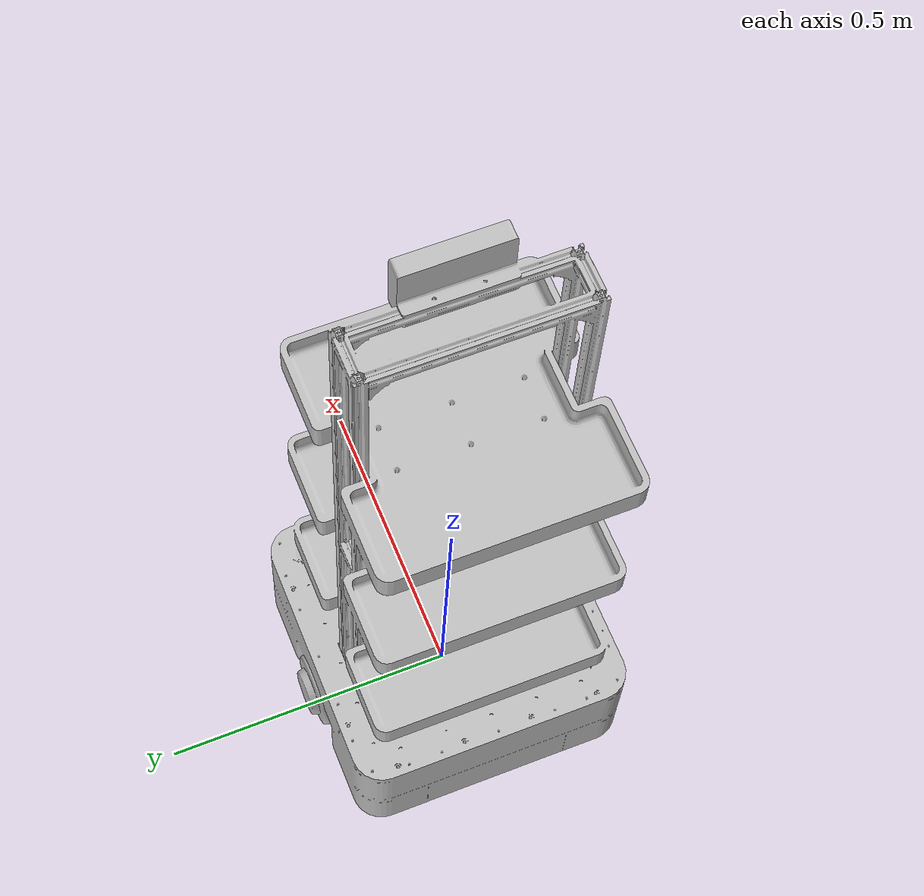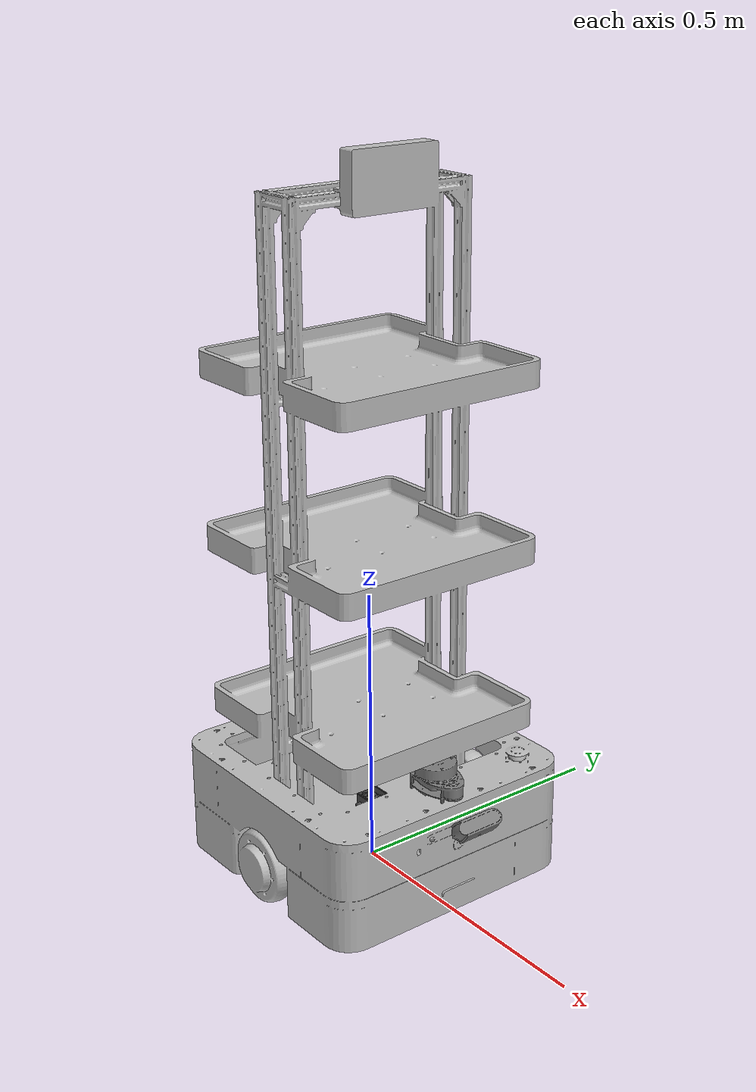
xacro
<?xml version="1.0"?>
<robot name="robot_full_design"
  xmlns:xacro="http://www.ros.org/wiki/xacro">

  <xacro:arg name="use_sim"   default="false"/>
  <xacro:arg name="use_lidar" default="true"/>

  <!-- ============================================================
       Properties
       ============================================================ -->

  <!-- Base body — SW mass; heavy parts (motors, batteries, chassis) sit low -->
  <xacro:property name="base_mass"   value="17.12"/>
  <xacro:property name="base_len"    value="0.42"/>
  <xacro:property name="base_width"  value="0.42"/>
  <xacro:property name="base_height" value="0.64"/>
  <xacro:property name="base_com_z"  value="0.08"/>  <!-- lowered CoM: heavy parts near base -->

  <!-- Wheels — old URDF values; SW wheel mass (21.77 kg) is corrupt due to grouping error -->
  <xacro:property name="wheel_mass"       value="5.5"/>
  <xacro:property name="wheel_radius"     value="0.065"/>
  <xacro:property name="wheel_width"      value="0.045"/>
  <xacro:property name="wheel_separation" value="0.45"/>
  <xacro:property name="wheel_diameter"   value="${2 * wheel_radius}"/>

  <!-- Spawn height: |wheel_joint_z| + wheel_radius + 1 cm clearance -->
  <xacro:property name="max_wheel_z" value="0.04"/>
  <xacro:property name="spawn_z"     value="${max_wheel_z + wheel_radius + 0.01}"/>

  <!-- Casters -->
  <xacro:property name="caster_mass"   value="0.108"/>
  <xacro:property name="caster_radius" value="0.0325"/>

  <!-- ============================================================
       Inertia macros
       ============================================================ -->

  <xacro:macro name="box_inertia" params="m l w h xyz rpy">
    <inertial>
      <origin xyz="${xyz}" rpy="${rpy}"/>
      <mass value="${m}"/>
      <inertia ixx="${(1/12.0) * m * (h*h + l*l)}" ixy="0" ixz="0"
               iyy="${(1/12.0) * m * (w*w + l*l)}" iyz="0"
               izz="${(1/12.0) * m * (w*w + h*h)}"/>
    </inertial>
  </xacro:macro>

  <xacro:macro name="cylinder_inertia" params="m r h xyz rpy">
    <inertial>
      <origin xyz="${xyz}" rpy="${rpy}"/>
      <mass value="${m}"/>
      <inertia ixx="${(1/12.0) * m * (3*r*r + h*h)}" ixy="0" ixz="0"
               iyy="${(1/12.0) * m * (3*r*r + h*h)}" iyz="0"
               izz="${0.5 * m * r*r}"/>
    </inertial>
  </xacro:macro>

  <xacro:macro name="sphere_inertia" params="m r xyz rpy">
    <inertial>
      <origin xyz="${xyz}" rpy="${rpy}"/>
      <mass value="${m}"/>
      <inertia ixx="${(2/5.0) * m * r*r}" ixy="0" ixz="0"
               iyy="${(2/5.0) * m * r*r}" iyz="0"
               izz="${(2/5.0) * m * r*r}"/>
    </inertial>
  </xacro:macro>

  <!-- Wheel spinning about Y axis -->
  <xacro:macro name="wheel_inertia" params="m r h xyz rpy">
    <inertial>
      <origin xyz="${xyz}" rpy="${rpy}"/>
      <mass value="${m}"/>
      <inertia ixx="${(1/12.0) * m * (3*r*r + h*h)}" ixy="0" ixz="0"
               iyy="${0.5 * m * r*r}"                 iyz="0"
               izz="${(1/12.0) * m * (3*r*r + h*h)}"/>
    </inertial>
  </xacro:macro>

  <!-- ============================================================
       Links
       ============================================================ -->

  <link name="base_footprint"/>

  <joint name="base_footprint_joint" type="fixed">
    <parent link="base_footprint"/>
    <child link="base_link"/>
    <origin xyz="0 0 0.105" rpy="0 0 0"/>
  </joint>

  <link name="base_link">
    <xacro:box_inertia m="10.0" l="0.42" w="0.2" h="0.2"
                       xyz="0 0 0.1" rpy="0 0 0"/>
    <visual>
      <origin xyz="0 0 0" rpy="0 0 0"/>
      <geometry>
        <mesh filename="package://food_del_robot_full_description/meshes/base_link.STL"/>
      </geometry>
      <material name="">
        <color rgba="0.75 0.75 0.75 1"/>
      </material>
    </visual>
    <collision>
      <origin xyz="0 0 ${base_height/2}" rpy="0 0 0"/>
      <geometry>
        <box size="${base_len} ${base_width} ${base_height}"/>
      </geometry>
    </collision>
  </link>

  <link name="right_wheel_link">
    <xacro:wheel_inertia m="${wheel_mass}" r="${wheel_radius}" h="${wheel_width}"
                         xyz="0 0 0" rpy="0 0 0"/>
    <visual>
      <origin xyz="0 0 0" rpy="0 0 0"/>
      <geometry>
        <mesh filename="package://food_del_robot_full_description/meshes/right_wheel_link.STL"/>
      </geometry>
      <material name="">
        <color rgba="0.75 0.75 0.75 1"/>
      </material>
    </visual>
    <collision>
      <origin xyz="0 0 0" rpy="1.5708 0 0"/>
      <geometry>
        <cylinder radius="${wheel_radius}" length="${wheel_width}"/>
      </geometry>
    </collision>
  </link>

  <joint name="base_right_wheel_joint" type="continuous">
    <origin xyz="0 -0.225 -0.04" rpy="0 0 0"/>
    <parent link="base_link"/>
    <child link="right_wheel_link"/>
    <axis xyz="0 1 0"/>
  </joint>

  <link name="left_wheel_link">
    <xacro:wheel_inertia m="${wheel_mass}" r="${wheel_radius}" h="${wheel_width}"
                         xyz="0 0 0" rpy="0 0 0"/>
    <visual>
      <origin xyz="0 0 0" rpy="0 0 0"/>
      <geometry>
        <mesh filename="package://food_del_robot_full_description/meshes/left_wheel_link.STL"/>
      </geometry>
      <material name="">
        <color rgba="0.75 0.75 0.75 1"/>
      </material>
    </visual>
    <collision>
      <origin xyz="0 0 0" rpy="1.5708 0 0"/>
      <geometry>
        <cylinder radius="${wheel_radius}" length="${wheel_width}"/>
      </geometry>
    </collision>
  </link>

  <joint name="base_left_wheel_joint" type="continuous">
    <origin xyz="0 0.225 -0.04" rpy="0 0 0"/>
    <parent link="base_link"/>
    <child link="left_wheel_link"/>
    <axis xyz="0 1 0"/>
  </joint>

  <link name="lidar_link">
    <inertial>
      <origin xyz="0.010632 -0.0016703 -0.018432" rpy="0 0 0"/>
      <mass value="0.01"/>
      <inertia ixx="1.9581E-05" ixy="-1.0393E-07" ixz="-4.2839E-07"
               iyy="2.4125E-05" iyz="9.4269E-09"
               izz="4.1418E-05"/>
    </inertial>
    <visual>
      <origin xyz="0 0 0" rpy="0 0 0"/>
      <geometry>
        <mesh filename="package://food_del_robot_full_description/meshes/lidar_link.STL"/>
      </geometry>
      <material name="">
        <color rgba="0.5 0.5 0.5 1"/>
      </material>
    </visual>
    <collision>
      <origin xyz="0 0 0" rpy="0 0 0"/>
      <geometry>
        <box size="0.01 0.1 0.02"/>
      </geometry>
    </collision>
  </link>

  <joint name="base_lidar_joint" type="fixed">
    <origin xyz="0.17965 0.0011689 0.14817" rpy="0 0 0"/>
    <parent link="base_link"/>
    <child link="lidar_link"/>
    <axis xyz="0 0 0"/>
  </joint>

  <link name="camera_link">
    <inertial>
      <origin xyz="-0.016393 -0.014932 -1.9236E-05" rpy="0 0 0"/>
      <mass value="0.01"/>
      <inertia ixx="4.7928E-05" ixy="-1.6932E-06" ixz="-2.8381E-08"
               iyy="1.5244E-05" iyz="2.4938E-09"
               izz="5.159E-05"/>
    </inertial>
    <visual>
      <origin xyz="0 0 0" rpy="0 0 0"/>
      <geometry>
        <mesh filename="package://food_del_robot_full_description/meshes/camera_link.STL"/>
      </geometry>
      <material name="">
        <color rgba="0.5 0.5 0.5 1"/>
      </material>
    </visual>
    <collision>
      <origin xyz="0 0 0" rpy="0 0 0"/>
      <geometry>
        <box size="0.09 0.025 0.025"/>
      </geometry>
    </collision>
  </link>

  <joint name="base_camera_joint" type="fixed">
    <origin xyz="0.28915 0.017531 0.091186" rpy="0 -0.7854 0"/>
    <parent link="base_link"/>
    <child link="camera_link"/>
    <axis xyz="0 0 0"/>
  </joint>

  <!-- Depth optical frame — referenced by Gazebo camera plugin -->
  <link name="camera_depth_optical_frame"/>
  <joint name="camera_depth_optical_joint" type="fixed">
    <origin xyz="0 0 0" rpy="-1.57079632679 0 -1.57079632679"/>
    <parent link="camera_link"/>
    <child link="camera_depth_optical_frame"/>
  </joint>

  <!-- IMU link -->
  <link name="imu_link">
    <inertial>
      <origin xyz="-1.2594E-05 -1.1909E-07 -0.0069553" rpy="0 0 0"/>
      <mass value="0.013048"/>
      <inertia ixx="2.9945E-06" ixy="4.6016E-12" ixz="2.1648E-08"
               iyy="1.9851E-06" iyz="2.4504E-14"
               izz="4.5735E-06"/>
    </inertial>
    <visual>
      <origin xyz="0 0 0" rpy="0 0 0"/>
      <geometry>
        <mesh filename="package://food_del_robot_full_description/meshes/imu_link.STL"/>
      </geometry>
      <material name="">
        <color rgba="0.3 0.3 0.3 1"/>
      </material>
    </visual>
    <collision>
      <origin xyz="0 0 0" rpy="0 0 0"/>
      <geometry>
        <box size="0.02 0.02 0.01"/>
      </geometry>
    </collision>
  </link>

  <joint name="base_imu_joint" type="fixed">
    <origin xyz="4.5433E-05 3.0734E-05 0.011601" rpy="0 0 0"/>
    <parent link="base_link"/>
    <child link="imu_link"/>
    <axis xyz="0 0 0"/>
  </joint>

  <!-- Caster wheels — Z recalculated for new base_link origin (spawn_z = 0.1155 m) -->
  <link name="caster1_link">
    <xacro:sphere_inertia m="${caster_mass}" r="${caster_radius}" xyz="0 0 0" rpy="0 0 0"/>
    <visual><origin xyz="0 0 0" rpy="0 0 0"/>
      <geometry><mesh filename="package://food_del_robot_full_description/meshes/caster1_link.STL"/></geometry>
      <material name=""><color rgba="0.75 0.75 0.75 1"/></material>
    </visual>
    <collision><origin xyz="0 0 0" rpy="0 0 0"/>
      <geometry><sphere radius="${caster_radius}"/></geometry>
    </collision>
  </link>
  <joint name="c1_b_joint" type="fixed">
    <origin xyz="-0.1845 -0.1560 -0.075" rpy="0 0 0"/>
    <parent link="base_link"/><child link="caster1_link"/>
    <axis xyz="0 0 0"/>
  </joint>

  <link name="caster2_link">
    <xacro:sphere_inertia m="${caster_mass}" r="${caster_radius}" xyz="0 0 0" rpy="0 0 0"/>
    <visual><origin xyz="0 0 0" rpy="0 0 0"/>
      <geometry><mesh filename="package://food_del_robot_full_description/meshes/caster2_link.STL"/></geometry>
      <material name=""><color rgba="0.75 0.75 0.75 1"/></material>
    </visual>
    <collision><origin xyz="0 0 0" rpy="0 0 0"/>
      <geometry><sphere radius="${caster_radius}"/></geometry>
    </collision>
  </link>
  <joint name="c2_b_joint" type="fixed">
    <origin xyz="-0.1845 0.1830 -0.075" rpy="0 0 0"/>
    <parent link="base_link"/><child link="caster2_link"/>
    <axis xyz="0 0 0"/>
  </joint>

  <link name="caster3_link">
    <xacro:sphere_inertia m="${caster_mass}" r="${caster_radius}" xyz="0 0 0" rpy="0 0 0"/>
    <visual><origin xyz="0 0 0" rpy="0 0 0"/>
      <geometry><mesh filename="package://food_del_robot_full_description/meshes/caster3_link.STL"/></geometry>
      <material name=""><color rgba="0.75 0.75 0.75 1"/></material>
    </visual>
    <collision><origin xyz="0 0 0" rpy="0 0 0"/>
      <geometry><sphere radius="${caster_radius}"/></geometry>
    </collision>
  </link>
  <joint name="c3_b_joint" type="fixed">
    <origin xyz="0.1845 -0.1560 -0.075" rpy="0 0 0"/>
    <parent link="base_link"/><child link="caster3_link"/>
    <axis xyz="0 0 0"/>
  </joint>

  <link name="caster4_link">
    <xacro:sphere_inertia m="${caster_mass}" r="${caster_radius}" xyz="0 0 0" rpy="0 0 0"/>
    <visual><origin xyz="0 0 0" rpy="0 0 0"/>
      <geometry><mesh filename="package://food_del_robot_full_description/meshes/caster4_link.STL"/></geometry>
      <material name=""><color rgba="0.75 0.75 0.75 1"/></material>
    </visual>
    <collision><origin xyz="0 0 0" rpy="0 0 0"/>
      <geometry><sphere radius="${caster_radius}"/></geometry>
    </collision>
  </link>
  <joint name="c4_b_joint" type="fixed">
    <origin xyz="0.1845 0.1830 -0.075" rpy="0 0 0"/>
    <parent link="base_link"/><child link="caster4_link"/>
    <axis xyz="0 0 0"/>
  </joint>

  <!-- ============================================================
       Gazebo plugins — only loaded when use_sim:=true
       ============================================================ -->
  <xacro:if value="$(arg use_sim)">

    <!-- Wheel friction -->
    <gazebo reference="right_wheel_link">
      <mu1>1.0</mu1><mu2>1.0</mu2>
      <kp>1000000.0</kp><kd>10.0</kd>
      <fdir1>1 0 0</fdir1>
      <minDepth>0.001</minDepth><maxVel>0.1</maxVel>
    </gazebo>
    <gazebo reference="left_wheel_link">
      <mu1>1.0</mu1><mu2>1.0</mu2>
      <kp>1000000.0</kp><kd>10.0</kd>
      <fdir1>1 0 0</fdir1>
      <minDepth>0.001</minDepth><maxVel>0.1</maxVel>
    </gazebo>

    <!-- Caster friction -->
    <gazebo reference="caster1_link">
      <mu1>0.01</mu1><mu2>0.01</mu2><kp>100000.0</kp><kd>100.0</kd>
    </gazebo>
    <gazebo reference="caster2_link">
      <mu1>0.01</mu1><mu2>0.01</mu2><kp>100000.0</kp><kd>100.0</kd>
    </gazebo>
    <gazebo reference="caster3_link">
      <mu1>0.01</mu1><mu2>0.01</mu2><kp>100000.0</kp><kd>100.0</kd>
    </gazebo>
    <gazebo reference="caster4_link">
      <mu1>0.01</mu1><mu2>0.01</mu2><kp>100000.0</kp><kd>100.0</kd>
    </gazebo>

    <!-- Differential drive plugin -->
    <gazebo>
      <plugin filename="libgazebo_ros_diff_drive.so" name="diff_drive_controller">
        <update_rate>50</update_rate>
        <left_joint>base_left_wheel_joint</left_joint>
        <right_joint>base_right_wheel_joint</right_joint>
        <wheel_separation>${wheel_separation}</wheel_separation>
        <wheel_diameter>${wheel_diameter}</wheel_diameter>
        <max_wheel_torque>20</max_wheel_torque>
        <max_wheel_acceleration>0.8</max_wheel_acceleration>
        <publish_odom>true</publish_odom>
        <publish_odom_tf>true</publish_odom_tf>
        <publish_wheel_tf>true</publish_wheel_tf>
        <odometry_topic>odom</odometry_topic>
        <odometry_frame>odom</odometry_frame>
        <robot_base_frame>base_footprint</robot_base_frame>
      </plugin>
    </gazebo>

    <xacro:if value="$(arg use_lidar)">
    <gazebo reference="lidar_link">
      <sensor name="lidar" type="ray">
        <pose>0 0 0 0 0 0</pose>
        <visualize>true</visualize>
        <update_rate>5.5</update_rate>
        <ray>
          <scan>
            <horizontal>
              <samples>360</samples>
              <resolution>1</resolution>
              <min_angle>-3.14159265</min_angle>
              <max_angle>3.14159265</max_angle>
            </horizontal>
          </scan>
          <range>
            <min>0.15</min>
            <max>12.0</max>
            <resolution>0.002</resolution>
          </range>
          <noise>
            <type>gaussian</type>
            <mean>0.0</mean>
            <stddev>0.01</stddev>
          </noise>
        </ray>
        <plugin name="lidar" filename="libgazebo_ros_ray_sensor.so">
          <ros>
            <remapping>~/out:=scan</remapping>
          </ros>
          <output_type>sensor_msgs/LaserScan</output_type>
          <topic>scan</topic>
          <frame_name>lidar_link</frame_name>
        </plugin>
      </sensor>
    </gazebo>
    </xacro:if>

    <gazebo reference="camera_link">
      <sensor name="d435i_camera" type="depth">
        <pose>0 0 0 0 0 0</pose>
        <visualize>true</visualize>
        <update_rate>30</update_rate>
        <camera>
          <horizontal_fov>1.5184</horizontal_fov>
          <image>
            <width>1280</width>
            <height>720</height>
            <format>R8G8B8</format>
          </image>
          <clip>
            <near>0.3</near>
            <far>3.0</far>
          </clip>
          <noise>
            <type>gaussian</type>
            <mean>0.0</mean>
            <stddev>0.005</stddev>
          </noise>
        </camera>
        <plugin name="d435i_controller" filename="libgazebo_ros_camera.so">
          <frame_name>camera_depth_optical_frame</frame_name>
          <camera_name>camera</camera_name>
          <hack_baseline>0.0</hack_baseline>
          <min_depth>0.3</min_depth>
          <max_depth>3.0</max_depth>
          <ros>
            <namespace>/</namespace>
            <remapping>~/image_raw:=camera/image_raw</remapping>
            <remapping>~/depth_image:=camera/depth/image_raw</remapping>
          </ros>
          <point_cloud_topic>camera/depth/points</point_cloud_topic>
          <point_cloud_cutoff>0.3</point_cloud_cutoff>
          <point_cloud_cutoff_max>3.0</point_cloud_cutoff_max>
        </plugin>
      </sensor>
    </gazebo>

  </xacro:if>

</robot>
